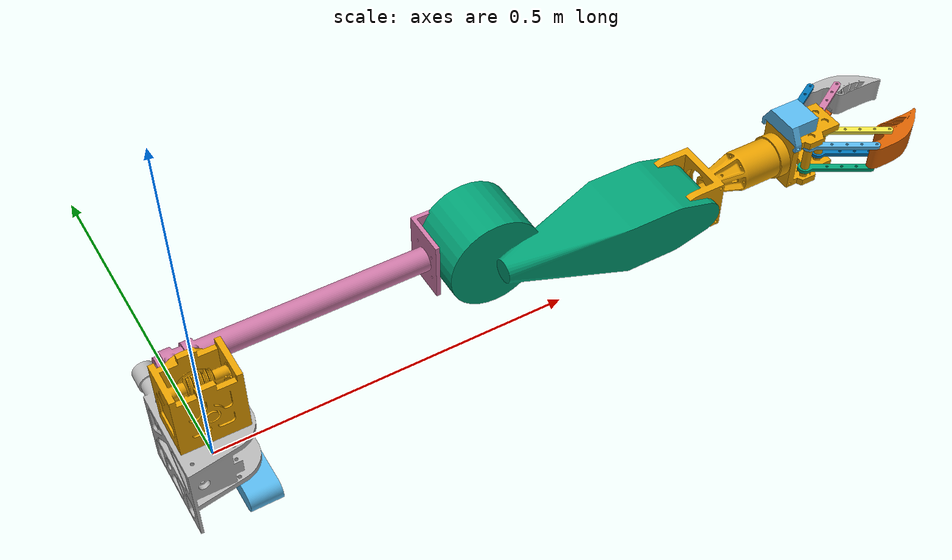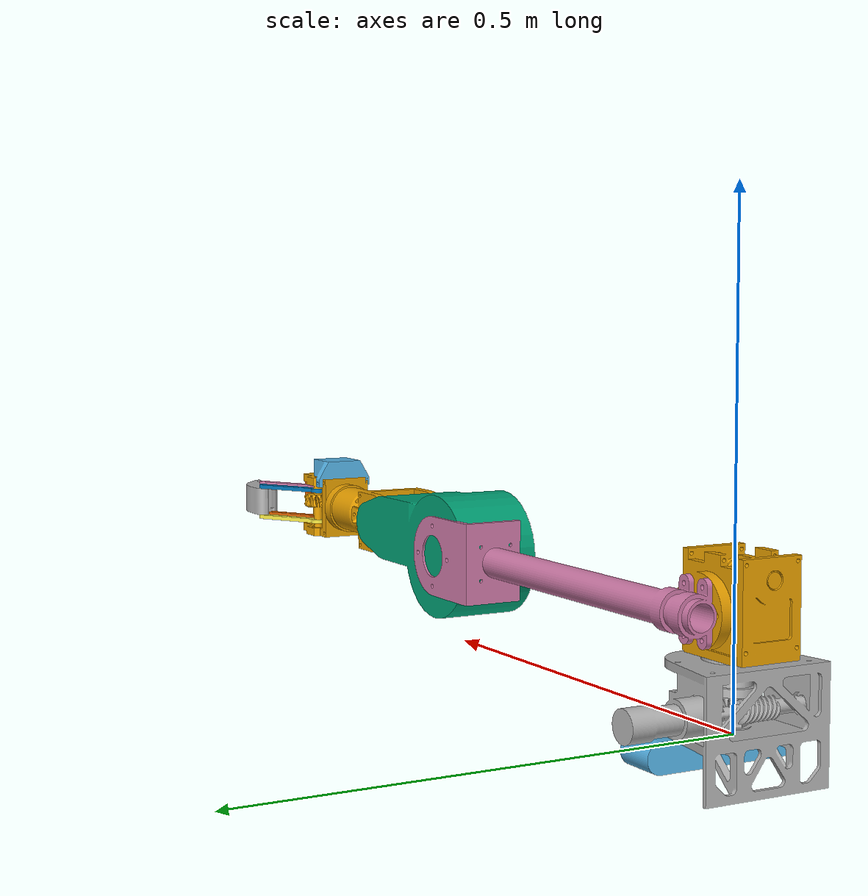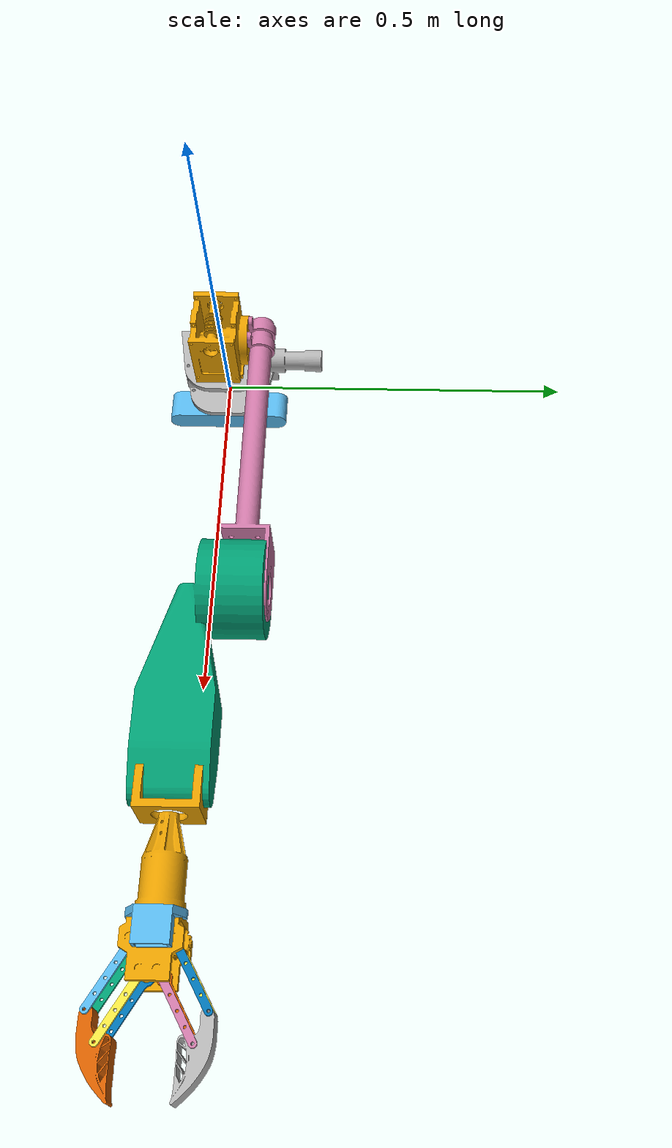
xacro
<?xml version="1.0"?>
<robot xmlns:xacro="http://www.ros.org/wiki/xacro" name="rover_arm">

  <xacro:arg name="use_gazebo_ros2_control" default="true"/>
  <!-- position (gazebo.launch.py) or velocity (arm_real_sim.launch.py, driven by virtual_esp.py) -->
  <xacro:arg name="gz_command_interface" default="position"/>
  <xacro:property name="gz_cmd_velocity" value="${'$(arg gz_command_interface)' == 'velocity'}"/>
  <!-- Namespace + controller file for Gazebo's own controller manager (arm_real_sim uses /gz). -->
  <xacro:arg name="gz_namespace" default=""/>
  <xacro:arg name="gz_controllers_file" default="ros2_controllers_sim.yaml"/>

  <xacro:include filename="$(find rover_arm_description)/urdf/rover_arm.xacro"/>

  <link name="world"/>
  <joint name="world_fixed_joint" type="fixed">
    <parent link="world"/>
    <child link="stand_link"/>
    <origin xyz="0 0 0" rpy="0 0 0"/>
  </joint>

  <xacro:if value="$(arg use_gazebo_ros2_control)">
    <xacro:macro name="gz_joint" params="name lower upper">
      <joint name="${name}">
        <xacro:if value="${gz_cmd_velocity}">
          <command_interface name="velocity"/>
        </xacro:if>
        <xacro:unless value="${gz_cmd_velocity}">
          <command_interface name="position">
            <param name="min">${lower}</param>
            <param name="max">${upper}</param>
          </command_interface>
        </xacro:unless>
        <state_interface name="position"/>
        <state_interface name="velocity"/>
      </joint>
    </xacro:macro>
    <xacro:macro name="gz_mimic" params="name">
      <joint name="${name}" mimic="true">
        <state_interface name="position"/>
        <state_interface name="velocity"/>
      </joint>
    </xacro:macro>

    <ros2_control name="GazeboSimSystem" type="system">
      <hardware>
        <plugin>gz_ros2_control/GazeboSimSystem</plugin>
      </hardware>
      <xacro:gz_joint name="base_link_joint" lower="-1.570795" upper="1.570795"/>
      <xacro:gz_joint name="shoulder_link_joint" lower="-1.570795" upper="0.3927"/>
      <xacro:gz_joint name="elbow_link_joint" lower="-3.141593" upper="3.141593"/>
      <xacro:gz_joint name="wrist_link_joint" lower="-1.570795" upper="1.570795"/>
      <xacro:gz_joint name="palm_link_joint" lower="-1.570796" upper="1.570796"/>  <!-- matches the URDF limit -->
      <!-- the gripper's one actuated joint -->
      <xacro:gz_joint name="right_finger_back_top_link_joint" lower="-0.785398" upper="0.523598"/>
      <xacro:gz_mimic name="right_finger_back_bottom_link_joint"/>
      <xacro:gz_mimic name="right_finger_front_bottom_link_joint"/>
      <xacro:gz_mimic name="right_finger_front_top_link_joint"/>
      <xacro:gz_mimic name="right_finger_link_joint"/>
      <xacro:gz_mimic name="left_finger_back_top_link_joint"/>
      <xacro:gz_mimic name="left_finger_back_bottom_link_joint"/>
      <xacro:gz_mimic name="left_finger_front_bottom_link_joint"/>
      <xacro:gz_mimic name="left_finger_front_top_link_joint"/>
      <xacro:gz_mimic name="left_finger_link_joint"/>
    </ros2_control>

    <gazebo>
      <plugin filename="gz_ros2_control-system" name="gz_ros2_control::GazeboSimROS2ControlPlugin">
        <ros>
          <namespace>$(arg gz_namespace)</namespace>
        </ros>
        <parameters>$(find rover_arm_description)/config/$(arg gz_controllers_file)</parameters>
      </plugin>
    </gazebo>
  </xacro:if>

  <!-- No Sensors / Physics systems here: worlds/world.sdf provides them. Adding a second
       Sensors system crashes Gazebo (duplicate render scene). -->
</robot>

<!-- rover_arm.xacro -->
<!--
  Robot: rover_arm_test_version
  Generated by: LinkForge v1.4.3
  https://github.com/arounamounchili/linkforge
  Date: 2026-08-16 16:50:29
-->
<robot xmlns:xacro="http://ros.org/xacro" name="rover_arm_test_version">
  <!-- Links -->
  <link name="base_link">
    <inertial>
      <origin xyz="-0.001028 0.001193 0.047499" rpy="0 0 1.570796" />
      <mass value="1" />
      <inertia ixx="0.001432" ixy="0" ixz="0" iyy="0.001278" iyz="0" izz="0.001206" />
    </inertial>
    <visual>
      <origin xyz="-0.001028 0.001193 0.047499" rpy="0 0 1.570796" />
      <geometry>
        <mesh filename="package://rover_arm_description/urdf/meshes/base_link_visual.obj" />
      </geometry>
    </visual>
    <collision>
      <origin xyz="-0.001028 0.001193 0.047499" rpy="0 0 1.570796" />
      <geometry>
        <box size="0.079456 0.090314 0.094999" />
      </geometry>
    </collision>
  </link>
  <link name="camera_mount_link">
    <inertial>
      <origin xyz="0.02205 -0.0356 0" rpy="0 0 0" />
      <mass value="0.05" />
      <inertia ixx="0.000023" ixy="0" ixz="0" iyy="0.00001" iyz="0" izz="0.000029" />
    </inertial>
    <visual>
      <origin xyz="0.02205 0 0.00615" rpy="0 0 0" />
      <geometry>
        <mesh filename="package://rover_arm_description/urdf/meshes/camera_mount_link_visual.obj" />
      </geometry>
    </visual>
    <collision>
      <origin xyz="0.02205 -0.0356 0" rpy="0 0 0" />
      <geometry>
        <box size="0.044099 0.071199 0.0225" />
      </geometry>
    </collision>
  </link>
  <link name="elbow_link">
    <inertial>
      <origin xyz="0.115487 -0.072527 -0.000852" rpy="0 0 1.570796" />
      <mass value="2.57" />
      <inertia ixx="0.428333" ixy="0" ixz="0" iyy="0.428333" iyz="0" izz="0.428333" />
    </inertial>
    <visual>
      <origin xyz="0.123458 -0.08171 -0.000357" rpy="0 0 1.570796" />
      <geometry>
        <mesh filename="package://rover_arm_description/urdf/meshes/elbow_link_visual.obj" />
      </geometry>
    </visual>
    <collision>
      <origin xyz="0.115487 -0.072527 -0.000852" rpy="0 0 1.570796" />
      <geometry>
        <mesh filename="package://rover_arm_description/urdf/meshes/elbow_link_collision.stl" />
      </geometry>
    </collision>
  </link>
  <link name="left_finger_back_bottom_link">
    <inertial>
      <origin xyz="0.036666 0.020224 0.0025" rpy="0 0 0" />
      <mass value="0.013" />
      <inertia ixx="0.002167" ixy="0" ixz="0" iyy="0.002167" iyz="0" izz="0.002167" />
    </inertial>
    <visual>
      <origin xyz="0.036666 0.020224 0.0025" rpy="0 0 0" />
      <geometry>
        <mesh filename="package://rover_arm_description/urdf/meshes/left_finger_back_bottom_link_visual.obj" />
      </geometry>
    </visual>
    <collision>
      <origin xyz="0.036666 0.020224 0.0025" rpy="0 0 0" />
      <geometry>
        <mesh filename="package://rover_arm_description/urdf/meshes/left_finger_back_bottom_link_collision.stl" />
      </geometry>
    </collision>
  </link>
  <link name="left_finger_back_top_link">
    <inertial>
      <origin xyz="0.036666 0.020224 0.0025" rpy="0 0 0" />
      <mass value="0.013" />
      <inertia ixx="0.002167" ixy="0" ixz="0" iyy="0.002167" iyz="0" izz="0.002167" />
    </inertial>
    <visual>
      <origin xyz="0.036666 0.020224 0.0025" rpy="0 0 0" />
      <geometry>
        <mesh filename="package://rover_arm_description/urdf/meshes/left_finger_back_top_link_visual.obj" />
      </geometry>
    </visual>
    <collision>
      <origin xyz="0.036666 0.020224 0.0025" rpy="0 0 0" />
      <geometry>
        <mesh filename="package://rover_arm_description/urdf/meshes/left_finger_back_top_link_collision.stl" />
      </geometry>
    </collision>
  </link>
  <link name="left_finger_front_bottom_link">
    <inertial>
      <origin xyz="0.036666 0.020224 0.0025" rpy="0 0 0" />
      <mass value="0.013" />
      <inertia ixx="0.002167" ixy="0" ixz="0" iyy="0.002167" iyz="0" izz="0.002167" />
    </inertial>
    <visual>
      <origin xyz="0.036662 0.020224 0.0025" rpy="0 0 0" />
      <geometry>
        <mesh filename="package://rover_arm_description/urdf/meshes/left_finger_front_bottom_link_visual.obj" />
      </geometry>
    </visual>
    <collision>
      <origin xyz="0.036666 0.020224 0.0025" rpy="0 0 0" />
      <geometry>
        <mesh filename="package://rover_arm_description/urdf/meshes/left_finger_front_bottom_link_collision.stl" />
      </geometry>
    </collision>
  </link>
  <link name="left_finger_front_top_link">
    <inertial>
      <origin xyz="0.036666 0.020224 0.0025" rpy="0 0 0" />
      <mass value="0.013" />
      <inertia ixx="0.002167" ixy="0" ixz="0" iyy="0.002167" iyz="0" izz="0.002167" />
    </inertial>
    <visual>
      <origin xyz="0.036662 0.020224 0.0025" rpy="0 0 0" />
      <geometry>
        <mesh filename="package://rover_arm_description/urdf/meshes/left_finger_front_top_link_visual.obj" />
      </geometry>
    </visual>
    <collision>
      <origin xyz="0.036666 0.020224 0.0025" rpy="0 0 0" />
      <geometry>
        <mesh filename="package://rover_arm_description/urdf/meshes/left_finger_front_top_link_collision.stl" />
      </geometry>
    </collision>
  </link>
  <link name="left_finger_link">
    <inertial>
      <origin xyz="0.046263 -0.014314 -0.0175" rpy="0 0 0" />
      <mass value="0.05" />
      <inertia ixx="0.008333" ixy="0" ixz="0" iyy="0.008333" iyz="0" izz="0.008333" />
    </inertial>
    <visual>
      <origin xyz="0.046263 -0.014314 -0.0175" rpy="0 0 0" />
      <geometry>
        <mesh filename="package://rover_arm_description/urdf/meshes/left_finger_link_visual.obj" />
      </geometry>
    </visual>
    <collision>
      <origin xyz="0.046263 -0.014314 -0.0175" rpy="0 0 0" />
      <geometry>
        <mesh filename="package://rover_arm_description/urdf/meshes/left_finger_link_collision.stl" />
      </geometry>
    </collision>
  </link>
  <link name="palm_link">
    <inertial>
      <origin xyz="0.039999 0.003006 0" rpy="0 0 0" />
      <mass value="0.453" />
      <inertia ixx="0.000454" ixy="0" ixz="0" iyy="0.000454" iyz="0" izz="0.000483" />
    </inertial>
    <visual>
      <origin xyz="0.039999 0.003006 0" rpy="0 0 0" />
      <geometry>
        <mesh filename="package://rover_arm_description/urdf/meshes/palm_link_visual.obj" />
      </geometry>
    </visual>
    <collision>
      <origin xyz="0.039999 0.003006 0" rpy="0 0 0" />
      <geometry>
        <box size="0.079999 0.079998 0.074999" />
      </geometry>
    </collision>
  </link>
  <link name="right_finger_back_bottom_link">
    <inertial>
      <origin xyz="0.036666 -0.020224 0.0025" rpy="0 0 0" />
      <mass value="0.013" />
      <inertia ixx="0.002167" ixy="0" ixz="0" iyy="0.002167" iyz="0" izz="0.002167" />
    </inertial>
    <visual>
      <origin xyz="0.036666 -0.020224 0.0025" rpy="0 0 0" />
      <geometry>
        <mesh filename="package://rover_arm_description/urdf/meshes/right_finger_back_bottom_link_visual.obj" />
      </geometry>
    </visual>
    <collision>
      <origin xyz="0.036666 -0.020224 0.0025" rpy="0 0 0" />
      <geometry>
        <mesh filename="package://rover_arm_description/urdf/meshes/right_finger_back_bottom_link_collision.stl" />
      </geometry>
    </collision>
  </link>
  <link name="right_finger_back_top_link">
    <inertial>
      <origin xyz="0.036666 -0.020224 0.0025" rpy="0 0 0" />
      <mass value="0.013" />
      <inertia ixx="0.002167" ixy="0" ixz="0" iyy="0.002167" iyz="0" izz="0.002167" />
    </inertial>
    <visual>
      <origin xyz="0.036666 -0.020224 0.0025" rpy="0 0 0" />
      <geometry>
        <mesh filename="package://rover_arm_description/urdf/meshes/right_finger_back_top_link_visual.obj" />
      </geometry>
    </visual>
    <collision>
      <origin xyz="0.036666 -0.020224 0.0025" rpy="0 0 0" />
      <geometry>
        <mesh filename="package://rover_arm_description/urdf/meshes/right_finger_back_top_link_collision.stl" />
      </geometry>
    </collision>
  </link>
  <link name="right_finger_front_bottom_link">
    <inertial>
      <origin xyz="0.036666 -0.020224 0.0025" rpy="0 0 0" />
      <mass value="0.013" />
      <inertia ixx="0.002167" ixy="0" ixz="0" iyy="0.002167" iyz="0" izz="0.002167" />
    </inertial>
    <visual>
      <origin xyz="0.036666 -0.020224 0.0025" rpy="0 0 0" />
      <geometry>
        <mesh filename="package://rover_arm_description/urdf/meshes/right_finger_front_bottom_link_visual.obj" />
      </geometry>
    </visual>
    <collision>
      <origin xyz="0.036666 -0.020224 0.0025" rpy="0 0 0" />
      <geometry>
        <mesh filename="package://rover_arm_description/urdf/meshes/right_finger_front_bottom_link_collision.stl" />
      </geometry>
    </collision>
  </link>
  <link name="right_finger_front_top_link">
    <inertial>
      <origin xyz="0.036666 -0.020224 0.0025" rpy="0 0 0" />
      <mass value="0.013" />
      <inertia ixx="0.002167" ixy="0" ixz="0" iyy="0.002167" iyz="0" izz="0.002167" />
    </inertial>
    <visual>
      <origin xyz="0.036666 -0.020224 0.0025" rpy="0 0 0" />
      <geometry>
        <mesh filename="package://rover_arm_description/urdf/meshes/right_finger_front_top_link_visual.obj" />
      </geometry>
    </visual>
    <collision>
      <origin xyz="0.036666 -0.020224 0.0025" rpy="0 0 0" />
      <geometry>
        <mesh filename="package://rover_arm_description/urdf/meshes/right_finger_front_top_link_collision.stl" />
      </geometry>
    </collision>
  </link>
  <link name="right_finger_link">
    <inertial>
      <origin xyz="0.046263 0.014314 -0.0175" rpy="0 0 0" />
      <mass value="0.05" />
      <inertia ixx="0.008333" ixy="0" ixz="0" iyy="0.008333" iyz="0" izz="0.008333" />
    </inertial>
    <visual>
      <origin xyz="0.046263 0.014314 -0.0175" rpy="0 0 0" />
      <geometry>
        <mesh filename="package://rover_arm_description/urdf/meshes/right_finger_link_visual.obj" />
      </geometry>
    </visual>
    <collision>
      <origin xyz="0.046263 0.014314 -0.0175" rpy="0 0 0" />
      <geometry>
        <mesh filename="package://rover_arm_description/urdf/meshes/right_finger_link_collision.stl" />
      </geometry>
    </collision>
  </link>
  <link name="shoulder_link">
    <inertial>
      <origin xyz="0.208545 0.020425 0.000072" rpy="0 0 0" />
      <mass value="0.5" />
      <inertia ixx="0.083333" ixy="0" ixz="0" iyy="0.083333" iyz="0" izz="0.083333" />
    </inertial>
    <visual>
      <origin xyz="0.208547 0.0205 0" rpy="0 0 1.570796" />
      <geometry>
        <mesh filename="package://rover_arm_description/urdf/meshes/shoulder_link_visual.obj" />
      </geometry>
    </visual>
    <collision>
      <origin xyz="0.208545 0.020425 0.000072" rpy="0 0 0" />
      <geometry>
        <mesh filename="package://rover_arm_description/urdf/meshes/shoulder_link_collision.stl" />
      </geometry>
    </collision>
  </link>
  <link name="stand_link">
    <inertial>
      <origin xyz="0.000553 0.035798 0.0135" rpy="0 0 1.570796" />
      <mass value="2" />
      <inertia ixx="0.004163" ixy="0" ixz="0" iyy="0.009635" iyz="0" izz="0.009077" />
    </inertial>
    <visual>
      <origin xyz="0.000553 0.035798 0.0135" rpy="0 0 1.570796" />
      <geometry>
        <mesh filename="package://rover_arm_description/urdf/meshes/stand_link_visual.obj" />
      </geometry>
    </visual>
    <collision>
      <origin xyz="0.000553 0.035798 0.0135" rpy="0 0 1.570796" />
      <geometry>
        <box size="0.20892 0.104 0.119" />
      </geometry>
    </collision>
  </link>
  <link name="wrist_link">
    <inertial>
      <origin xyz="0.065296 0 0.000008" rpy="0 0 0" />
      <mass value="0.45" />
      <inertia ixx="0.075" ixy="0" ixz="0" iyy="0.075" iyz="0" izz="0.075" />
    </inertial>
    <visual>
      <origin xyz="0.065296 0 0.000008" rpy="0 0 0" />
      <geometry>
        <mesh filename="package://rover_arm_description/urdf/meshes/wrist_link_visual.obj" />
      </geometry>
    </visual>
    <collision>
      <origin xyz="0.065296 0 0.000008" rpy="0 0 0" />
      <geometry>
        <mesh filename="package://rover_arm_description/urdf/meshes/wrist_link_collision.stl" />
      </geometry>
    </collision>
  </link>
  <link name="zed_camera_link">
    <inertial>
      <origin xyz="-0.02155 0 -0.01515" rpy="0 0 0" />
      <mass value="0.166" />
      <inertia ixx="0.000438" ixy="0" ixz="0" iyy="0.000038" iyz="0" izz="0.000451" />
    </inertial>
    <visual>
      <origin xyz="-0.02155 0 -0.01515" rpy="0 0 0" />
      <geometry>
        <mesh filename="package://rover_arm_description/urdf/meshes/zed_camera_link_visual.obj" />
      </geometry>
    </visual>
    <collision>
      <origin xyz="-0.02155 0 -0.01515" rpy="0 0 0" />
      <geometry>
        <box size="0.0431 0.1753 0.0303" />
      </geometry>
    </collision>
  </link>
  <!-- Joints. Arm efforts are the CAD motor torques (from the v1 export); 10 Nm everywhere
       was too weak to lift the arm in a physics engine that enforces effort limits. -->
  <joint name="base_link_joint" type="revolute">
    <origin xyz="-0.000162 -0.000166 0.073" rpy="0 0 0" />
    <parent link="stand_link" />
    <child link="base_link" />
    <axis xyz="0 0 1" />
    <limit effort="34.32" velocity="1" lower="-1.745329" upper="1.745329" />
    <!-- friction was 75 Nm: more than the joint's 34 Nm effort, so under DART the base could
         never turn. The real base is held by its motor/gearbox, not by joint friction. -->
    <dynamics friction="1.0" damping="1.0" />
  </joint>
  <joint name="camera_mount_link_joint" type="fixed">
    <origin xyz="0 0.003006 0.0375" rpy="0 0 0" />
    <parent link="palm_link" />
    <child link="camera_mount_link" />
  </joint>
  <joint name="elbow_link_joint" type="revolute">
    <origin xyz="0.404295 0.046999 0" rpy="0 0 0" />
    <parent link="shoulder_link" />
    <child link="elbow_link" />
    <axis xyz="0 1 0" />
    <limit effort="123.56" velocity="1" lower="-3.316126" upper="3.316126" />
  </joint>
  <joint name="left_finger_back_bottom_link_joint" type="revolute">
    <origin xyz="0.031938 0.024947 -0.0225" rpy="0 0 0" />
    <parent link="palm_link" />
    <child link="left_finger_back_bottom_link" />
    <axis xyz="0 0 1" />
    <limit effort="10" velocity="1" lower="-3.141593" upper="3.141593" />
    <mimic joint="right_finger_back_top_link_joint" multiplier="-1" />
  </joint>
  <joint name="left_finger_back_top_link_joint" type="revolute">
    <origin xyz="0.031938 0.024947 0.0175" rpy="0 0 0" />
    <parent link="palm_link" />
    <child link="left_finger_back_top_link" />
    <axis xyz="0 0 1" />
    <limit effort="10" velocity="1" lower="-3.141593" upper="3.141593" />
    <mimic joint="right_finger_back_top_link_joint" multiplier="-1" />
  </joint>
  <joint name="left_finger_front_bottom_link_joint" type="revolute">
    <origin xyz="0.066942 0.009947 -0.0225" rpy="0 0 0" />
    <parent link="palm_link" />
    <child link="left_finger_front_bottom_link" />
    <axis xyz="0 0 1" />
    <limit effort="10" velocity="1" lower="-3.141593" upper="3.141593" />
    <mimic joint="right_finger_back_top_link_joint" multiplier="-1" />
  </joint>
  <joint name="left_finger_front_top_link_joint" type="revolute">
    <origin xyz="0.066942 0.009947 0.0175" rpy="0 0 0" />
    <parent link="palm_link" />
    <child link="left_finger_front_top_link" />
    <axis xyz="0 0 1" />
    <limit effort="10" velocity="1" lower="-3.141593" upper="3.141593" />
    <mimic joint="right_finger_back_top_link_joint" multiplier="-1" />
  </joint>
  <joint name="left_finger_link_joint" type="revolute">
    <origin xyz="0.07789 0.04497 0" rpy="0 0 0" />
    <parent link="left_finger_back_top_link" />
    <child link="left_finger_link" />
    <axis xyz="0 0 1" />
    <limit effort="10" velocity="1" lower="-3.141593" upper="3.141593" />
    <mimic joint="right_finger_back_top_link_joint" />
  </joint>
  <joint name="palm_link_joint" type="revolute">
    <origin xyz="0.163045 -0.000975 0.000003" rpy="0 0 0" />
    <parent link="wrist_link" />
    <child link="palm_link" />
    <axis xyz="1 0 0" />
    <limit effort="10" velocity="1" lower="-1.745329" upper="1.745329" />
  </joint>
  <joint name="right_finger_back_bottom_link_joint" type="revolute">
    <origin xyz="0.03232 -0.024728 0.01734" rpy="0 0 0" />
    <parent link="palm_link" />
    <child link="right_finger_back_bottom_link" />
    <axis xyz="0 0 1" />
    <limit effort="10" velocity="1" lower="-3.141593" upper="3.141593" />
    <mimic joint="right_finger_back_top_link_joint" />
  </joint>
  <joint name="right_finger_back_top_link_joint" type="revolute">
    <origin xyz="0.03232 -0.024728 -0.02266" rpy="0 0 0" />
    <parent link="palm_link" />
    <child link="right_finger_back_top_link" />
    <axis xyz="0 0 1" />
    <limit effort="10" velocity="1" lower="-0.785398" upper="0.523598" />
  </joint>
  <joint name="right_finger_front_bottom_link_joint" type="revolute">
    <origin xyz="0.06732 -0.009728 0.01734" rpy="0 0 0" />
    <parent link="palm_link" />
    <child link="right_finger_front_bottom_link" />
    <axis xyz="0 0 1" />
    <limit effort="10" velocity="1" lower="-3.141593" upper="3.141593" />
    <mimic joint="right_finger_back_top_link_joint" />
  </joint>
  <joint name="right_finger_front_top_link_joint" type="revolute">
    <origin xyz="0.06732 -0.009728 -0.02266" rpy="0 0 0" />
    <parent link="palm_link" />
    <child link="right_finger_front_top_link" />
    <axis xyz="0 0 1" />
    <limit effort="10" velocity="1" lower="-3.141593" upper="3.141593" />
    <mimic joint="right_finger_back_top_link_joint" />
  </joint>
  <joint name="right_finger_link_joint" type="revolute">
    <origin xyz="0.07789 -0.04497 -0.000001" rpy="0 0 0" />
    <parent link="right_finger_back_bottom_link" />
    <child link="right_finger_link" />
    <axis xyz="0 0 1" />
    <limit effort="10" velocity="1" lower="-3.141593" upper="3.141593" />
    <mimic joint="right_finger_back_top_link_joint" multiplier="-1" />
  </joint>
  <joint name="shoulder_link_joint" type="revolute">
    <origin xyz="0.000139 0.040749 0.044051" rpy="0 0 0" />
    <parent link="base_link" />
    <child link="shoulder_link" />
    <axis xyz="0 1 0" />
    <limit effort="137.3" velocity="1" lower="-1.745329" upper="0.567232" />
  </joint>
  <joint name="wrist_link_joint" type="revolute">
    <origin xyz="0.266996 -0.096997 -0.000596" rpy="0 0 0" />
    <parent link="elbow_link" />
    <child link="wrist_link" />
    <axis xyz="0 1 0" />
    <limit effort="27.46" velocity="1" lower="-1.745329" upper="1.745329" />
  </joint>
  <joint name="zed_camera_link_joint" type="fixed">
    <origin xyz="0.052553 -0.000162 0" rpy="0 0 0" />
    <parent link="stand_link" />
    <child link="zed_camera_link" />
  </joint>
  <!-- Sensors -->
  <gazebo reference="camera_mount_link">
    <sensor name="camera_mount_link_sensor" type="camera">
      <always_on>true</always_on>
      <update_rate>30</update_rate>
      <visualize>false</visualize>
      <topic>/gripper/camera</topic>
      <pose>0 0 0.01115 0 0 0</pose>
      <camera>
        <horizontal_fov>1.047</horizontal_fov>
        <image>
          <width>640</width>
          <height>480</height>
          <format>R8G8B8</format>
        </image>
        <clip>
          <near>0.1</near>
          <far>100</far>
        </clip>
      </camera>
    </sensor>
  </gazebo>

  <gazebo reference="zed_camera_link">
    <sensor name="zed_camera_link_sensor" type="rgbd">
      <always_on>true</always_on>
      <update_rate>15.0</update_rate>
      <topic>/zed/zed_node/image</topic>
      <gz_frame_id>zed_camera_link</gz_frame_id>
      <camera>
        <!-- 110 degree horizontal FOV in radians -->
        <horizontal_fov>1.91986</horizontal_fov>
        <image>
          <width>1280</width>
          <height>720</height>
          <format>R8G8B8</format>
        </image>
        <clip>
          <near>0.3</near>
          <far>20.0</far>
        </clip>
        <noise>
          <type>gaussian</type>
          <mean>0.0</mean>
          <stddev>0.007</stddev>
        </noise>
      </camera>
    </sensor>
  </gazebo>
</robot>
